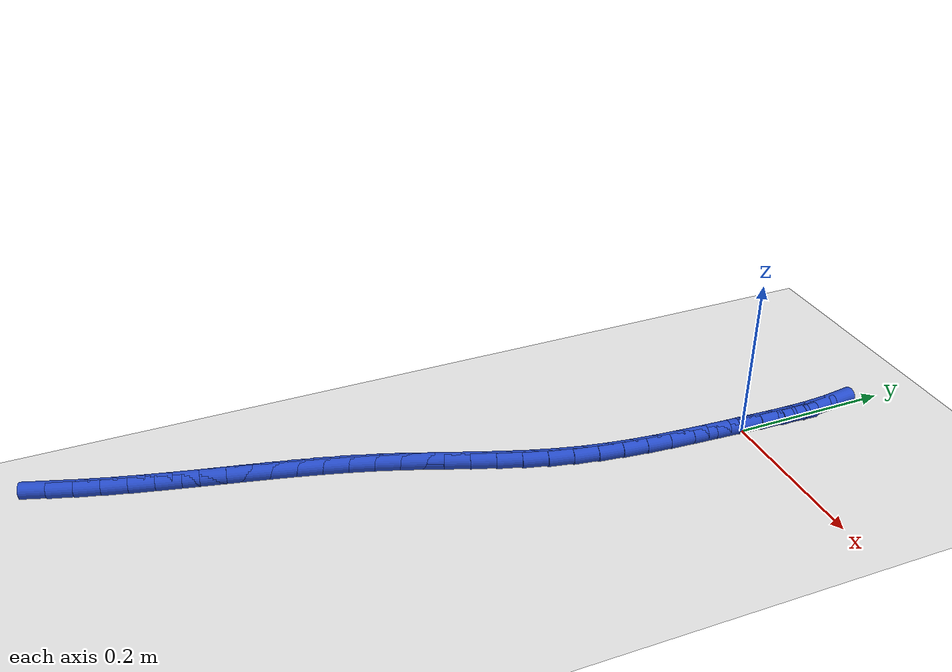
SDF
<sdf version="1.6">
 <world name="default">
  <model name="ground_plane">
   <static>1</static>
   <link name="link">
    <collision name="collision">
     <geometry><plane><normal>0 0 1</normal><size>100 100</size></plane></geometry>
     <surface><friction><ode><mu>100</mu><mu2>50</mu2></ode></friction></surface>
    </collision>
    <visual name="visual">
     <cast_shadows>0</cast_shadows>
     <geometry><plane><normal>0 0 1</normal><size>100 100</size></plane></geometry>
     <material>
      <script><uri>file://media/materials/scripts/gazebo.material</uri><name>Gazebo/WhiteGlow</name></script>
     </material>
    </visual>
   </link>
  </model>
  <model name="line">
   <link name="link_0">
    <pose>4.7704895589362195e-18 0.0 0.01 0 1.57 1.5209005659295367</pose>
    <collision name="collision">
     <geometry><cylinder><radius>0.01</radius><length>0.08</length></cylinder></geometry>
    </collision>
    <visual name="visual">
     <material>
      <script><name>Gazebo/Blue</name><uri>file://media/materials/scripts/gazebo.material</uri></script>
     </material>
     <geometry><cylinder><radius>0.01</radius><length>0.08</length></cylinder></geometry>
    </visual>
   </link>
   <link name="link_1">
    <pose>0.0015284782496837674 0.03060800328766565 0.01 0 1.57 1.537293580630483</pose>
    <collision name="collision">
     <geometry><cylinder><radius>0.01</radius><length>0.08</length></cylinder></geometry>
    </collision>
    <visual name="visual">
     <material>
      <script><name>Gazebo/Blue</name><uri>file://media/materials/scripts/gazebo.material</uri></script>
     </material>
     <geometry><cylinder><radius>0.01</radius><length>0.08</length></cylinder></geometry>
    </visual>
   </link>
   <link name="link_2">
    <pose>0.0025532625696801543 0.061184627325808004 0.01 0 1.57 -1.569080206977457</pose>
    <collision name="collision">
     <geometry><cylinder><radius>0.01</radius><length>0.08</length></cylinder></geometry>
    </collision>
    <visual name="visual">
     <material>
      <script><name>Gazebo/Blue</name><uri>file://media/materials/scripts/gazebo.material</uri></script>
     </material>
     <geometry><cylinder><radius>0.01</radius><length>0.08</length></cylinder></geometry>
    </visual>
   </link>
   <link name="link_3">
    <pose>0.002500974813831004 0.09165319017757491 0.01 0 1.57 -1.5146294672387601</pose>
    <collision name="collision">
     <geometry><cylinder><radius>0.01</radius><length>0.08</length></cylinder></geometry>
    </collision>
    <visual name="visual">
     <material>
      <script><name>Gazebo/Blue</name><uri>file://media/materials/scripts/gazebo.material</uri></script>
     </material>
     <geometry><cylinder><radius>0.01</radius><length>0.08</length></cylinder></geometry>
    </visual>
   </link>
   <link name="link_4">
    <pose>0.0007982368359781573 0.12193700990611418 0.01 0 1.57 -1.4407465822392564</pose>
    <collision name="collision">
     <geometry><cylinder><radius>0.01</radius><length>0.08</length></cylinder></geometry>
    </collision>
    <visual name="visual">
     <material>
      <script><name>Gazebo/Blue</name><uri>file://media/materials/scripts/gazebo.material</uri></script>
     </material>
     <geometry><cylinder><radius>0.01</radius><length>0.08</length></cylinder></geometry>
    </visual>
   </link>
   <link name="link_253">
    <pose>-0.19404400535662666 -0.7880502111928526 0.01 0 1.57 1.2498203767436502</pose>
    <collision name="collision">
     <geometry><cylinder><radius>0.01</radius><length>0.08</length></cylinder></geometry>
    </collision>
    <visual name="visual">
     <material>
      <script><name>Gazebo/Blue</name><uri>file://media/materials/scripts/gazebo.material</uri></script>
     </material>
     <geometry><cylinder><radius>0.01</radius><length>0.08</length></cylinder></geometry>
    </visual>
   </link>
   <link name="link_254">
    <pose>-0.18445493158301202 -0.759208539466161 0.01 0 1.57 1.2788599134048895</pose>
    <collision name="collision">
     <geometry><cylinder><radius>0.01</radius><length>0.08</length></cylinder></geometry>
    </collision>
    <visual name="visual">
     <material>
      <script><name>Gazebo/Blue</name><uri>file://media/materials/scripts/gazebo.material</uri></script>
     </material>
     <geometry><cylinder><radius>0.01</radius><length>0.08</length></cylinder></geometry>
    </visual>
   </link>
   <link name="link_255">
    <pose>-0.17574788899795035 -0.7302355602114253 0.01 0 1.57 1.3026196388137592</pose>
    <collision name="collision">
     <geometry><cylinder><radius>0.01</radius><length>0.08</length></cylinder></geometry>
    </collision>
    <visual name="visual">
     <material>
      <script><name>Gazebo/Blue</name><uri>file://media/materials/scripts/gazebo.material</uri></script>
     </material>
     <geometry><cylinder><radius>0.01</radius><length>0.08</length></cylinder></geometry>
    </visual>
   </link>
   <link name="link_256">
    <pose>-0.16775795880934163 -0.7011597160175366 0.01 0 1.57 1.320975025042449</pose>
    <collision name="collision">
     <geometry><cylinder><radius>0.01</radius><length>0.08</length></cylinder></geometry>
    </collision>
    <visual name="visual">
     <material>
      <script><name>Gazebo/Blue</name><uri>file://media/materials/scripts/gazebo.material</uri></script>
     </material>
     <geometry><cylinder><radius>0.01</radius><length>0.08</length></cylinder></geometry>
    </visual>
   </link>
   <link name="link_257">
    <pose>-0.1603202222250863 -0.6720094494733871 0.01 0 1.57 1.3338474957492201</pose>
    <collision name="collision">
     <geometry><cylinder><radius>0.01</radius><length>0.08</length></cylinder></geometry>
    </collision>
    <visual name="visual">
     <material>
      <script><name>Gazebo/Blue</name><uri>file://media/materials/scripts/gazebo.material</uri></script>
     </material>
     <geometry><cylinder><radius>0.01</radius><length>0.08</length></cylinder></geometry>
    </visual>
   </link>
   <link name="link_258">
    <pose>-0.15326976045308432 -0.6428132031678678 0.01 0 1.57 1.3411892751990666</pose>
    <collision name="collision">
     <geometry><cylinder><radius>0.01</radius><length>0.08</length></cylinder></geometry>
    </collision>
    <visual name="visual">
     <material>
      <script><name>Gazebo/Blue</name><uri>file://media/materials/scripts/gazebo.material</uri></script>
     </material>
     <geometry><cylinder><radius>0.01</radius><length>0.08</length></cylinder></geometry>
    </visual>
   </link>
   <link name="link_259">
    <pose>-0.14644165470123602 -0.6135994196898703 0.01 0 1.57 1.3429722078942299</pose>
    <collision name="collision">
     <geometry><cylinder><radius>0.01</radius><length>0.08</length></cylinder></geometry>
    </collision>
    <visual name="visual">
     <material>
      <script><name>Gazebo/Blue</name><uri>file://media/materials/scripts/gazebo.material</uri></script>
     </material>
     <geometry><cylinder><radius>0.01</radius><length>0.08</length></cylinder></geometry>
    </visual>
   </link>
   <link name="link_260">
    <pose>-0.13967098617744161 -0.5843965416282864 0.01 0 1.57 1.3391812278812951</pose>
    <collision name="collision">
     <geometry><cylinder><radius>0.01</radius><length>0.08</length></cylinder></geometry>
    </collision>
    <visual name="visual">
     <material>
      <script><name>Gazebo/Blue</name><uri>file://media/materials/scripts/gazebo.material</uri></script>
     </material>
     <geometry><cylinder><radius>0.01</radius><length>0.08</length></cylinder></geometry>
    </visual>
   </link>
   <link name="link_261">
    <pose>-0.132792836089601 -0.555233011572006 0.01 0 1.57 1.329812815000932</pose>
    <collision name="collision">
     <geometry><cylinder><radius>0.01</radius><length>0.08</length></cylinder></geometry>
    </collision>
    <visual name="visual">
     <material>
      <script><name>Gazebo/Blue</name><uri>file://media/materials/scripts/gazebo.material</uri></script>
     </material>
     <geometry><cylinder><radius>0.01</radius><length>0.08</length></cylinder></geometry>
    </visual>
   </link>
   <link name="link_262">
    <pose>-0.12564228564561475 -0.5261372721099229 0.01 0 1.57 1.3148785660849645</pose>
    <collision name="collision">
     <geometry><cylinder><radius>0.01</radius><length>0.08</length></cylinder></geometry>
    </collision>
    <visual name="visual">
     <material>
      <script><name>Gazebo/Blue</name><uri>file://media/materials/scripts/gazebo.material</uri></script>
     </material>
     <geometry><cylinder><radius>0.01</radius><length>0.08</length></cylinder></geometry>
    </visual>
   </link>
   <link name="link_263">
    <pose>-0.11805441605338296 -0.49713776583092767 0.01 0 1.57 1.2944138304865727</pose>
    <collision name="collision">
     <geometry><cylinder><radius>0.01</radius><length>0.08</length></cylinder></geometry>
    </collision>
    <visual name="visual">
     <material>
      <script><name>Gazebo/Blue</name><uri>file://media/materials/scripts/gazebo.material</uri></script>
     </material>
     <geometry><cylinder><radius>0.01</radius><length>0.08</length></cylinder></geometry>
    </visual>
   </link>
   <link name="link_264">
    <pose>-0.10986430852080578 -0.46826293532391183 0.01 0 1.57 1.2684910993373355</pose>
    <collision name="collision">
     <geometry><cylinder><radius>0.01</radius><length>0.08</length></cylinder></geometry>
    </collision>
    <visual name="visual">
     <material>
      <script><name>Gazebo/Blue</name><uri>file://media/materials/scripts/gazebo.material</uri></script>
     </material>
     <geometry><cylinder><radius>0.01</radius><length>0.08</length></cylinder></geometry>
    </visual>
   </link>
   <link name="link_265">
    <pose>-0.10090704425578337 -0.43954122317776656 0.01 0 1.57 1.238706946482905</pose>
    <collision name="collision">
     <geometry><cylinder><radius>0.01</radius><length>0.08</length></cylinder></geometry>
    </collision>
    <visual name="visual">
     <material>
      <script><name>Gazebo/Blue</name><uri>file://media/materials/scripts/gazebo.material</uri></script>
     </material>
     <geometry><cylinder><radius>0.01</radius><length>0.08</length></cylinder></geometry>
    </visual>
   </link>
   <link name="link_266">
    <pose>-0.09106169484761495 -0.4109924809143558 0.01 0 1.57 1.215901666180464</pose>
    <collision name="collision">
     <geometry><cylinder><radius>0.01</radius><length>0.08</length></cylinder></geometry>
    </collision>
    <visual name="visual">
     <material>
      <script><name>Gazebo/Blue</name><uri>file://media/materials/scripts/gazebo.material</uri></script>
     </material>
     <geometry><cylinder><radius>0.01</radius><length>0.08</length></cylinder></geometry>
    </visual>
   </link>
   <link name="link_267">
    <pose>-0.08053005063168092 -0.38257353495117696 0.01 0 1.57 1.204710432627818</pose>
    <collision name="collision">
     <geometry><cylinder><radius>0.01</radius><length>0.08</length></cylinder></geometry>
    </collision>
    <visual name="visual">
     <material>
      <script><name>Gazebo/Blue</name><uri>file://media/materials/scripts/gazebo.material</uri></script>
     </material>
     <geometry><cylinder><radius>0.01</radius><length>0.08</length></cylinder></geometry>
    </visual>
   </link>
   <link name="link_268">
    <pose>-0.06965761252434363 -0.35421314586054625 0.01 0 1.57 1.2050262508662732</pose>
    <collision name="collision">
     <geometry><cylinder><radius>0.01</radius><length>0.08</length></cylinder></geometry>
    </collision>
    <visual name="visual">
     <material>
      <script><name>Gazebo/Blue</name><uri>file://media/materials/scripts/gazebo.material</uri></script>
     </material>
     <geometry><cylinder><radius>0.01</radius><length>0.08</length></cylinder></geometry>
    </visual>
   </link>
   <link name="link_269">
    <pose>-0.058790539567753645 -0.3258399456866197 0.01 0 1.57 1.2168393546353904</pose>
    <collision name="collision">
     <geometry><cylinder><radius>0.01</radius><length>0.08</length></cylinder></geometry>
    </collision>
    <visual name="visual">
     <material>
      <script><name>Gazebo/Blue</name><uri>file://media/materials/scripts/gazebo.material</uri></script>
     </material>
     <geometry><cylinder><radius>0.01</radius><length>0.08</length></cylinder></geometry>
    </visual>
   </link>
   <link name="link_270">
    <pose>-0.04827499080406107 -0.2973825664735528 0.01 0 1.57 1.2402575826920352</pose>
    <collision name="collision">
     <geometry><cylinder><radius>0.01</radius><length>0.08</length></cylinder></geometry>
    </collision>
    <visual name="visual">
     <material>
      <script><name>Gazebo/Blue</name><uri>file://media/materials/scripts/gazebo.material</uri></script>
     </material>
     <geometry><cylinder><radius>0.01</radius><length>0.08</length></cylinder></geometry>
    </visual>
   </link>
   <link name="link_271">
    <pose>-0.03845712527541709 -0.26876964026550354 0.01 0 1.57 1.2754608431670065</pose>
    <collision name="collision">
     <geometry><cylinder><radius>0.01</radius><length>0.08</length></cylinder></geometry>
    </collision>
    <visual name="visual">
     <material>
      <script><name>Gazebo/Blue</name><uri>file://media/materials/scripts/gazebo.material</uri></script>
     </material>
     <geometry><cylinder><radius>0.01</radius><length>0.08</length></cylinder></geometry>
    </visual>
   </link>
   <link name="link_272">
    <pose>-0.02968310202397185 -0.2399297991066274 0.01 0 1.57 1.322398606501987</pose>
    <collision name="collision">
     <geometry><cylinder><radius>0.01</radius><length>0.08</length></cylinder></geometry>
    </collision>
    <visual name="visual">
     <material>
      <script><name>Gazebo/Blue</name><uri>file://media/materials/scripts/gazebo.material</uri></script>
     </material>
     <geometry><cylinder><radius>0.01</radius><length>0.08</length></cylinder></geometry>
    </visual>
   </link>
   <link name="link_273">
    <pose>-0.02229293236395759 -0.2107928727971013 0.01 0 1.57 1.3730061718682074</pose>
    <collision name="collision">
     <geometry><cylinder><radius>0.01</radius><length>0.08</length></cylinder></geometry>
    </collision>
    <visual name="visual">
     <material>
      <script><name>Gazebo/Blue</name><uri>file://media/materials/scripts/gazebo.material</uri></script>
     </material>
     <geometry><cylinder><radius>0.01</radius><length>0.08</length></cylinder></geometry>
    </visual>
   </link>
   <link name="link_274">
    <pose>-0.01638925555748927 -0.18133493810970297 0.01 0 1.57 1.4166324841995603</pose>
    <collision name="collision">
     <geometry><cylinder><radius>0.01</radius><length>0.08</length></cylinder></geometry>
    </collision>
    <visual name="visual">
     <material>
      <script><name>Gazebo/Blue</name><uri>file://media/materials/scripts/gazebo.material</uri></script>
     </material>
     <geometry><cylinder><radius>0.01</radius><length>0.08</length></cylinder></geometry>
    </visual>
   </link>
   <link name="link_275">
    <pose>-0.011767290611069313 -0.15159196621510296 0.01 0 1.57 1.452455009899534</pose>
    <collision name="collision">
     <geometry><cylinder><radius>0.01</radius><length>0.08</length></cylinder></geometry>
    </collision>
    <visual name="visual">
     <material>
      <script><name>Gazebo/Blue</name><uri>file://media/materials/scripts/gazebo.material</uri></script>
     </material>
     <geometry><cylinder><radius>0.01</radius><length>0.08</length></cylinder></geometry>
    </visual>
   </link>
   <link name="link_276">
    <pose>-0.008201804845277869 -0.12160391286661318 0.01 0 1.57 1.4804844877615189</pose>
    <collision name="collision">
     <geometry><cylinder><radius>0.01</radius><length>0.08</length></cylinder></geometry>
    </collision>
    <visual name="visual">
     <material>
      <script><name>Gazebo/Blue</name><uri>file://media/materials/scripts/gazebo.material</uri></script>
     </material>
     <geometry><cylinder><radius>0.01</radius><length>0.08</length></cylinder></geometry>
    </visual>
   </link>
   <link name="link_277">
    <pose>-0.00546756558069508 -0.091410733817546 0.01 0 1.57 1.500807365852529</pose>
    <collision name="collision">
     <geometry><cylinder><radius>0.01</radius><length>0.08</length></cylinder></geometry>
    </collision>
    <visual name="visual">
     <material>
      <script><name>Gazebo/Blue</name><uri>file://media/materials/scripts/gazebo.material</uri></script>
     </material>
     <geometry><cylinder><radius>0.01</radius><length>0.08</length></cylinder></geometry>
    </visual>
   </link>
   <link name="link_278">
    <pose>-0.003339340137901086 -0.061052384821213494 0.01 0 1.57 1.5135348450328345</pose>
    <collision name="collision">
     <geometry><cylinder><radius>0.01</radius><length>0.08</length></cylinder></geometry>
    </collision>
    <visual name="visual">
     <material>
      <script><name>Gazebo/Blue</name><uri>file://media/materials/scripts/gazebo.material</uri></script>
     </material>
     <geometry><cylinder><radius>0.01</radius><length>0.08</length></cylinder></geometry>
    </visual>
   </link>
   <link name="link_279">
    <pose>-0.0015918958374759797 -0.030568821630926873 0.01 0 1.57 1.5187675250726482</pose>
    <collision name="collision">
     <geometry><cylinder><radius>0.01</radius><length>0.08</length></cylinder></geometry>
    </collision>
    <visual name="visual">
     <material>
      <script><name>Gazebo/Blue</name><uri>file://media/materials/scripts/gazebo.material</uri></script>
     </material>
     <geometry><cylinder><radius>0.01</radius><length>0.08</length></cylinder></geometry>
    </visual>
   </link>
   <link name="link_280">
    <pose>-6.5052130349130266e-18 -2.220446049250313e-16 0.01 0 1.57 1.5165745770554706</pose>
    <collision name="collision">
     <geometry><cylinder><radius>0.01</radius><length>0.08</length></cylinder></geometry>
    </collision>
    <visual name="visual">
     <material>
      <script><name>Gazebo/Blue</name><uri>file://media/materials/scripts/gazebo.material</uri></script>
     </material>
     <geometry><cylinder><radius>0.01</radius><length>0.08</length></cylinder></geometry>
    </visual>
   </link>
   <link name="link_281">
    <pose>0.0016615800539467515 0.030614124318255297 0.01 0 1.57 1.5069859250470499</pose>
    <collision name="collision">
     <geometry><cylinder><radius>0.01</radius><length>0.08</length></cylinder></geometry>
    </collision>
    <visual name="visual">
     <material>
      <script><name>Gazebo/Blue</name><uri>file://media/materials/scripts/gazebo.material</uri></script>
     </material>
     <geometry><cylinder><radius>0.01</radius><length>0.08</length></cylinder></geometry>
    </visual>
   </link>
   <link name="link_282">
    <pose>0.0036180770037841517 0.06123359557052753 0.01 0 1.57 1.5117784742907245</pose>
    <collision name="collision">
     <geometry><cylinder><radius>0.01</radius><length>0.08</length></cylinder></geometry>
    </collision>
    <visual name="visual">
     <material>
      <script><name>Gazebo/Blue</name><uri>file://media/materials/scripts/gazebo.material</uri></script>
     </material>
     <geometry><cylinder><radius>0.01</radius><length>0.08</length></cylinder></geometry>
    </visual>
   </link>
  </model>
 </world>
</sdf>
